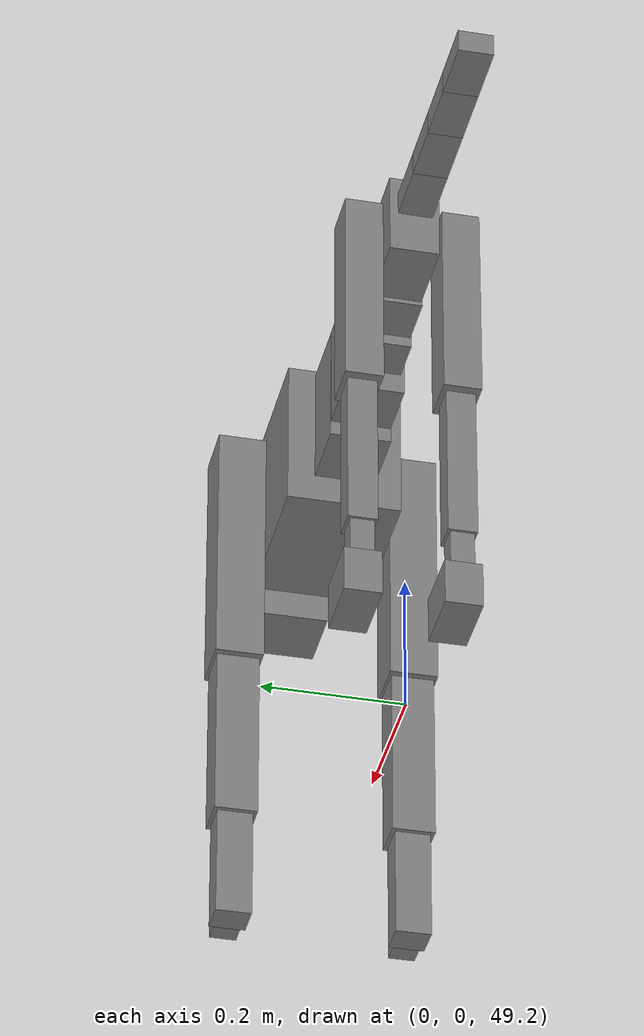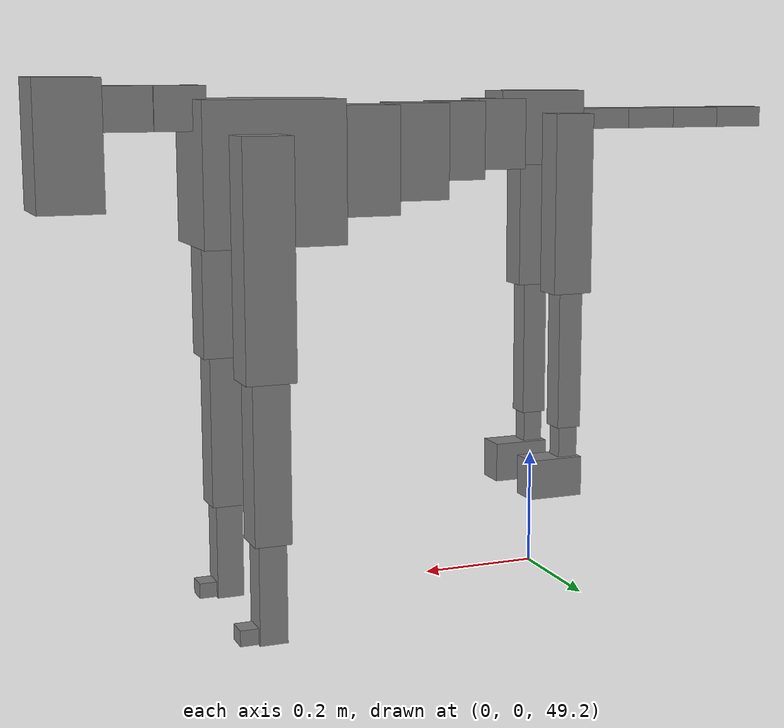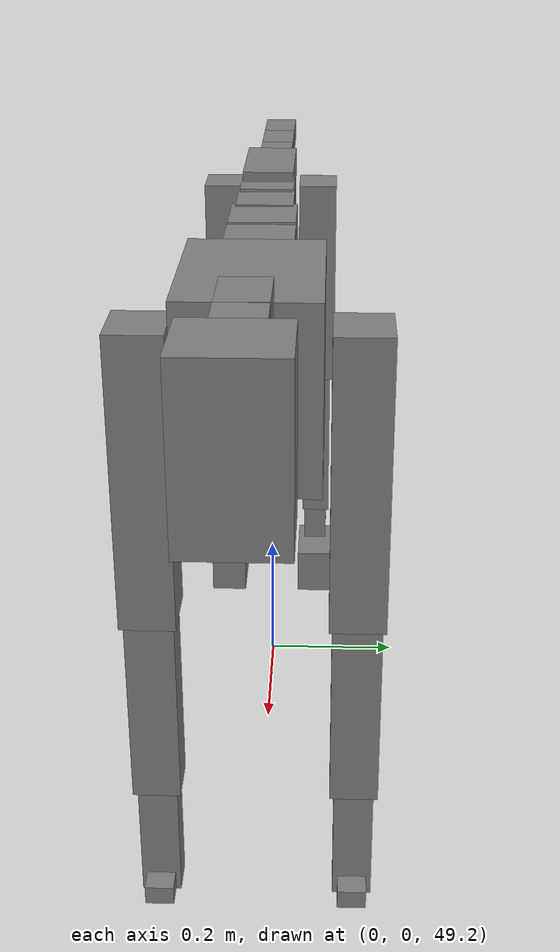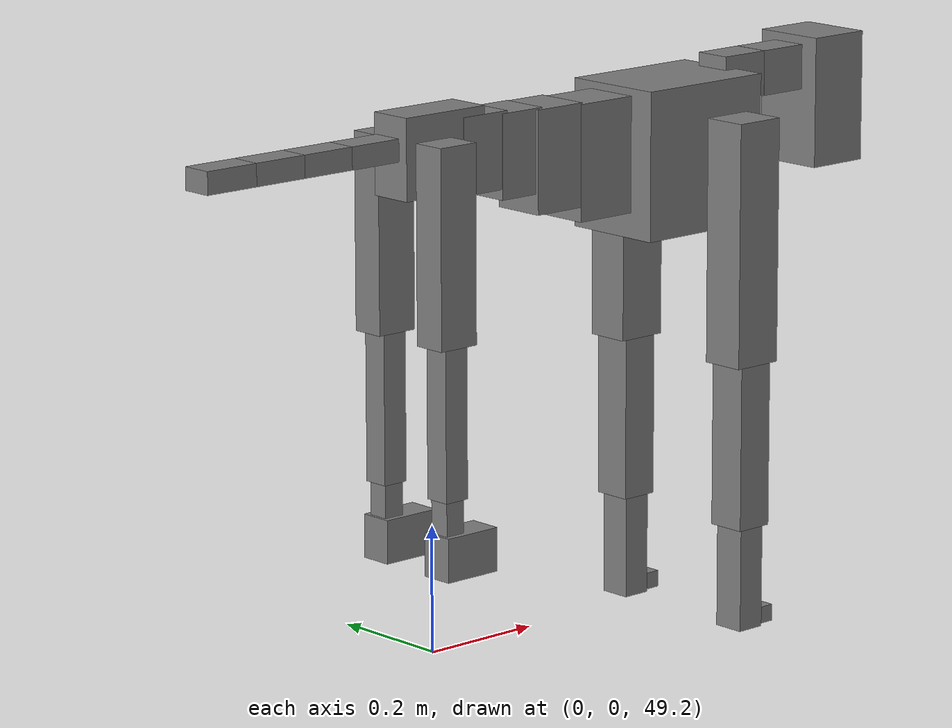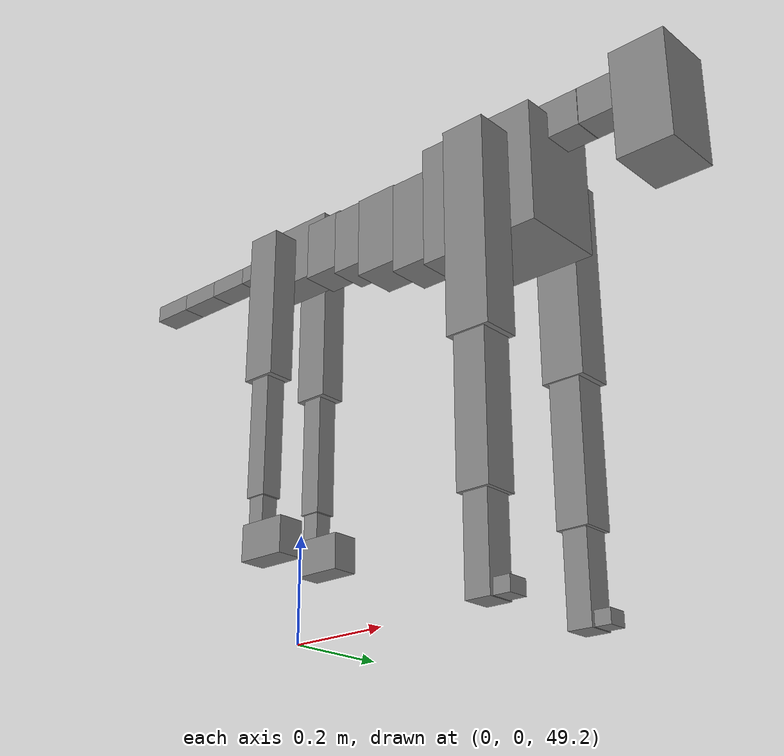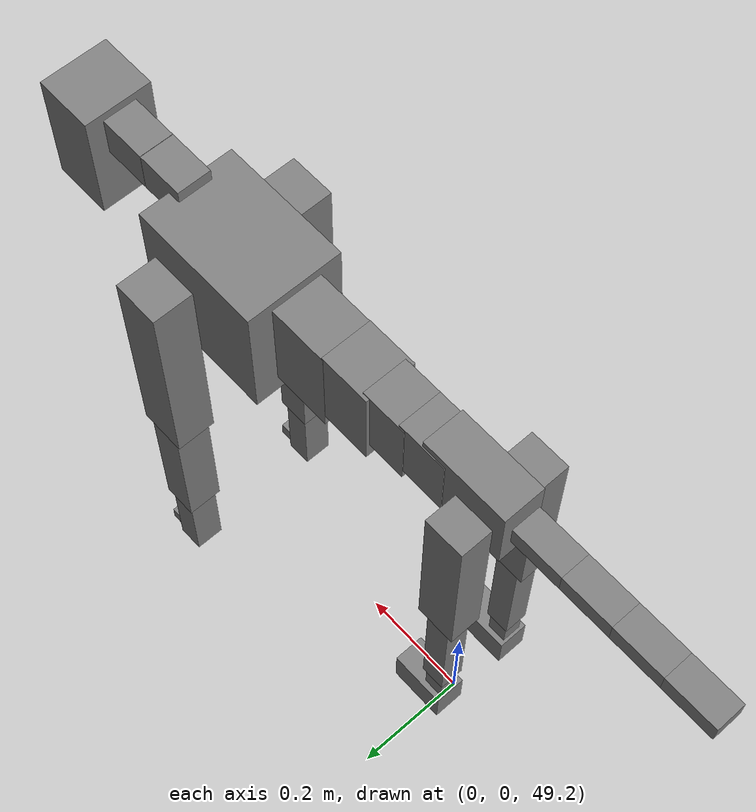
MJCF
<mujoco model="dog">

    <default>
        <joint armature="0.02" stiffness="1" damping="0.2" limited="true"/>
        <geom condim="3" friction="1 0.05 0.05" margin="0.01"/>
        <motor ctrllimited="true" ctrlrange="-1.0 1.0" forcelimited="true" gear="50"/>
    </default>

    <compiler inertiafromgeom="true" angle="radian"/>

    <option timestep="0.016" iterations="50" tolerance="1e-10" solver="Newton" jacobian="dense" cone="pyramidal"/>

    <size nconmax="20000" njmax="60000" nstack="5000000"/>
    <visual>
        <map force="0.1" zfar="30"/>
        <rgba haze="0.15 0.25 0.35 1"/>
        <quality shadowsize="2048"/>
        <global offwidth="800" offheight="800"/>
    </visual>

    <asset>
        <texture type="skybox" builtin="gradient" rgb1="0.3 0.5 0.7" rgb2="0 0 0" width="512" height="512"/>
        <texture name="texplane" type="2d" builtin="checker" rgb1=".2 .3 .4" rgb2=".1 0.15 0.2" width="512" height="512"
                 mark="cross" markrgb=".8 .8 .8"/>
        <texture name="texgeom" type="cube" builtin="flat" mark="cross" width="127" height="1278" rgb1="0.8 0.6 0.4"
                 rgb2="0.8 0.6 0.4" markrgb="1 1 1" random="0.01"/>

        <material name="matplane" reflectance="0.3" texture="texplane" texrepeat="1 1" texuniform="true"/>
        <material name="matgeom" texture="texgeom" texuniform="true" rgba="0.8 0.6 .4 1"/>
    </asset>

    <worldbody>
        <geom name="floor" pos="0 0 0" size="0 0 .25" type="plane" material="matplane" condim="3"/>

        <light directional="false" diffuse=".2 .2 .2" specular="0 0 0" pos="0 0 5" dir="0 0 -1" castshadow="false"/>
        <light mode="targetbodycom" target="torso" directional="false" diffuse=".8 .8 .8" specular="0.3 0.3 0.3"
               pos="0 0 4.0" dir="0 0 -1"/>

        <body name="root" pos="0 0 50">
            <freejoint name="root_1"/>
            <geom type="box" pos="0 0 -0.02" size="0.0774  0.0358  0.063" density="2030"/>

            <body name="spine1" pos="0.054 0 0">
                <joint name="spine1_y" axis="0 1 0" range="0 0.7" limited="true"/>
                <geom type="box" pos="0.02375 0 -0.03" size="0.04375  0.0375  0.05985" density="2030"/>

                <body name="spine2" pos="0.0612 0 0">
                    <joint name="spine2_y" axis="0 1 0" range="-0.15 0.15" limited="true"/>
                    <geom type="box" pos="0.03555  0  -0.04" size="0.04055  0.039  0.06615" density="2030"/>

                    <body name="spine3" pos="0.0730 0 0">
                        <joint name="spine3_y" axis="0 1 0" range="-0.15 0.15" limited="true"/>
                        <geom type="box" pos="0.03555  0  -0.057" size="0.04555  0.0445  0.081" density="2030"/>

                        <body name="spine4" pos="0.0780 0 0">
                            <joint name="spine4_y" axis="0 1 0" range="-0.15 0.15" limited="true"/>
                            <geom type="box" pos="0.05265  0  -0.07" size="0.05265  0.045  0.09135" density="2030"/>

                            <body name="torso" pos="0.1082 0 0">
                                <joint name="torso_y" axis="0 1 0" range="-0.15 0.15" limited="true"/>
                                <geom type="box" pos="0.11925  0  -0.085" size="0.11925  0.085  0.11745"
                                      density="2030"/>

                                <body name="neck1" pos="0.2160  0   0.0180">
                                    <joint name="neck1_y" axis="0 1 0" range="-1.2  -1" limited="true"/>
                                    <geom type="box" pos="0.0423  0  0" size="0.0423  0.03  0.036" density="2325"/>

                                    <body name="neck2" pos="0.0853  0  0">
                                        <joint name="neck2_y" axis="0 1 0" range="0.1  0" limited="true"/>
                                        <geom type="box" pos="0.0423  0  0" size="0.0423  0.03  0.036" density="2325"/>

                                        <body name="head" pos="0.0853  0  0">
                                            <joint name="head_y" axis="0 1 0" range="-0.3  -0.2" limited="true"/>
                                            <geom type="box" pos="0.0531  0  -0.055" size="0.0531  0.06  0.1044"
                                                  density="4030"/>

                                        </body>
                                    </body>
                                </body>

                                <body name="front_shoulder" pos="0.156  0   -0.0480">
                                    <joint name="front_shoulder_y" axis="0 1 0" range="-1 1.5" limited="true"/>
                                    <geom type="box" pos="0 0.13 -0.1667" size="0.0419  0.0358  0.1934" density="1158"/>
                                    <geom type="box" pos="0 -0.13 -0.1667" size="0.0419  0.0358  0.1934"
                                          density="1158"/>

                                    <body name="front_elbow" pos="0  0  -0.3335">
                                        <joint name="front_elbow_y" axis="0 1 0" range="-2 0" limited="true"/>
                                        <geom type="box" pos="0 0.13 -0.1449" size="0.0310  0.0317  0.1449"
                                              density="1081"/>
                                        <geom type="box" pos="0 -0.13 -0.1449" size="0.0310  0.0317  0.1449"
                                              density="1081"/>

                                        <body name="front_wrist" pos="0  0  -0.2899">
                                            <joint name="front_wrist_y" axis="0 1 0" range="-0.2 0" limited="true"/>
                                            <geom type="box" pos="0 0.13 -0.0764" size="0.0235  0.0262  0.0896"
                                                  density="1664"/>
                                            <geom type="box" pos="0 -0.13 -0.0764" size="0.0235  0.0262  0.0896"
                                                  density="1664"/>

                                            <body name="front_finger_end" pos="0  0  -0.1528">
                                                <joint name="front_finger_y" axis="0 1 0" range="-0.4 1"
                                                       limited="true"/>
                                                <geom type="box" pos="0.0193  0.13  0.0015"
                                                      size="0.0353  0.0193  0.0135" density="1515"/>
                                                <geom type="box" pos="0.0193  -0.13  0.0015"
                                                      size="0.0353  0.0193  0.0135" density="1515"/>

                                            </body>

                                        </body>
                                    </body>
                                </body>

                            </body>
                        </body>
                    </body>
                </body>
            </body>

            <body name="back_hip" pos="-0.03 0 -0.018">
                <joint name="back_hip_y" axis="0 1 0" range="-1.5 0.3" limited="true"/>
                <geom type="box" pos="0 0.07 -0.1306" size="0.0348  0.0273  0.1534" density="1154"/>
                <geom type="box" pos="0 -0.07 -0.1306" size="0.0348  0.0273  0.1534" density="1154"/>

                <body name="back_knee" pos="0  0  -0.2613">
                    <joint name="back_knee_y" axis="0 1 0" range="0 2.8" limited="true"/>
                    <geom type="box" pos="0 0.07 -0.1215" size="0.0214  0.0211  0.1371" density="1227"/>
                    <geom type="box" pos="0 -0.07 -0.1215" size="0.0214  0.0211  0.1371" density="1227"/>

                    <body name="back_ankle" pos="0  0  -0.2431">
                        <joint name="back_ankle_y" axis="0 1 0" range="-2.2 0" limited="true"/>
                        <geom type="box" pos="0 0.07 -0.0417" size="0.0172  0.0172  0.0530" density="1284"/>
                        <geom type="box" pos="0 -0.07 -0.0417" size="0.0172  0.0172  0.0530" density="1284"/>

                        <body name="back_toe_end" pos="0  0  -0.0834">
                            <joint name="back_toe_y" axis="0 1 0" range="-0.4 1" limited="true"/>
                            <geom type="box" pos="0.0267  0.07  -0.0194" size="0.0490  0.0267  0.0344" density="1515"/>
                            <geom type="box" pos="0.0267  -0.07  -0.0194" size="0.0490  0.0267  0.0344" density="1515"/>

                        </body>
                    </body>
                </body>
            </body>

            <body name="tail1" pos="-0.074 0 -0.006">
                <joint name="tail1_y" axis="0 1 0" range="-0.2 0.2" limited="true"/>
                <geom type="box" pos="-0.0536  0  0" size="0.045  0.025  0.0175" density="1587"/>

                <body name="tail2" pos="-0.09 0 0">
                    <joint name="tail2_y" axis="0 1 0" range="-0.2 0.2" limited="true"/>
                    <geom type="box" pos="-0.0536  0  0" size="0.045  0.025  0.0175" density="1587"/>

                    <body name="tail3" pos="-0.09 0 0">
                        <joint name="tail3_y" axis="0 1 0" range="-0.2 0.2" limited="true"/>
                        <geom type="box" pos="-0.0536  0  0" size="0.045  0.025  0.0175" density="1587"/>

                        <body name="tail4" pos="-0.09 0 0">
                            <joint name="tail4_y" axis="0 1 0" range="-0.2 0.2" limited="true"/>
                            <geom type="box" pos="-0.0536  0  0" size="0.045  0.025  0.0175" density="1587"/>

                        </body>
                    </body>
                </body>
            </body>
        </body>
    </worldbody>

    <actuator>
        <motor joint="spine1_y" forcerange="-150 150     "/>
        <motor joint="spine2_y" forcerange="-150 150     "/>
        <motor joint="spine3_y" forcerange="-150 150     "/>
        <motor joint="spine4_y" forcerange="-150 150     "/>
        <motor joint="torso_y" forcerange="-150 150     "/>
        <motor joint="neck1_y" forcerange="-100 100       "/>
        <motor joint="neck2_y" forcerange="-100 100       "/>
        <motor joint="head_y" forcerange="-150 150       "/>
        <motor joint="front_shoulder_y" forcerange="-162.75 175.83"/>
        <motor joint="front_elbow_y" forcerange="-157.44 173.36"/>
        <motor joint="front_wrist_y" forcerange="-77.69 131.53"/>
        <motor joint="front_finger_y" forcerange="-37.53 25.19"/>
        <motor joint="back_hip_y" forcerange="-286.65 276.76"/>
        <motor joint="back_knee_y" forcerange="-213.95 293.49"/>
        <motor joint="back_angle_y" forcerange="-68.58 106.66"/>
        <motor joint="back_toe_y" forcerange="-77.93 55.93"/>
        <motor joint="tail1_y" forcerange="-50 50     "/>
        <motor joint="tail2_y" forcerange="-50 50     "/>
        <motor joint="tail3_y" forcerange="-50 50     "/>
        <motor joint="tail4_y" forcerange="-50 50     "/>
    </actuator>
</mujoco>
